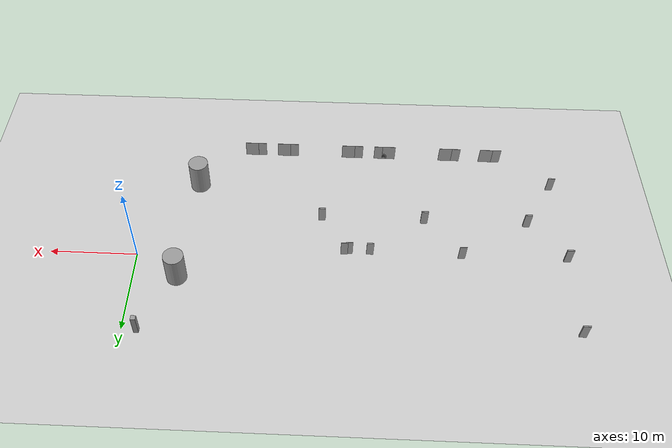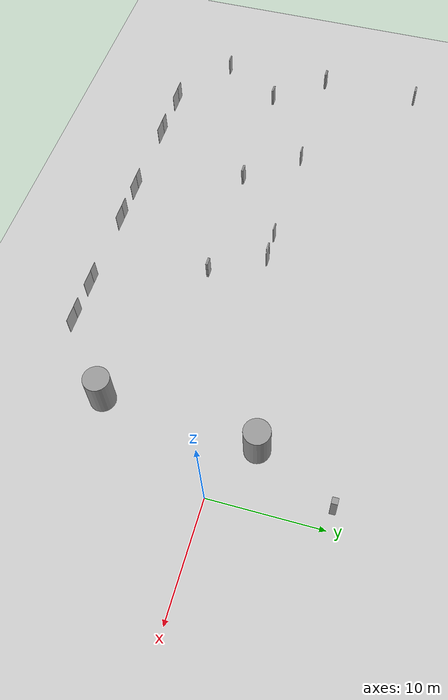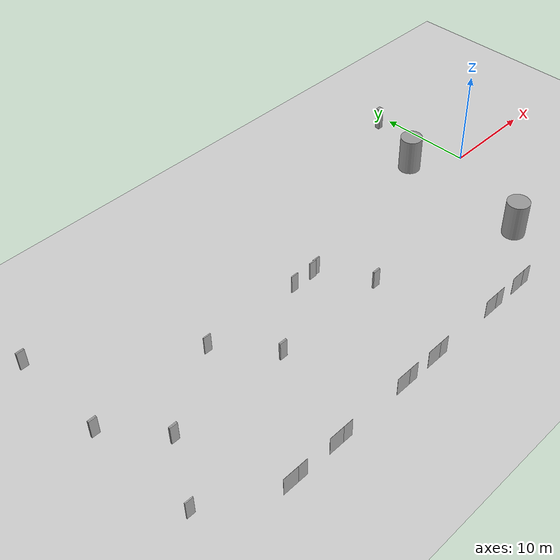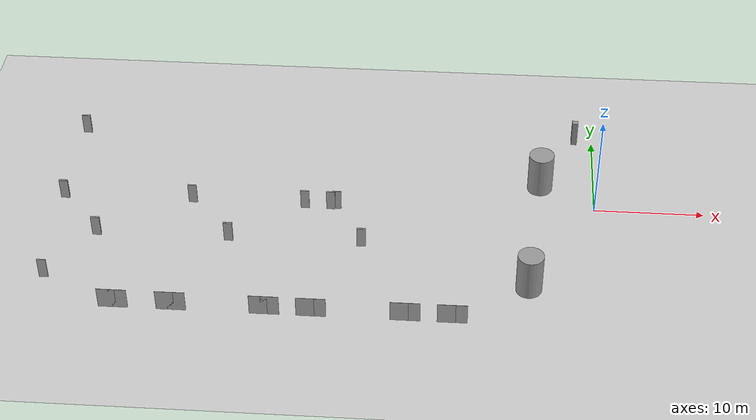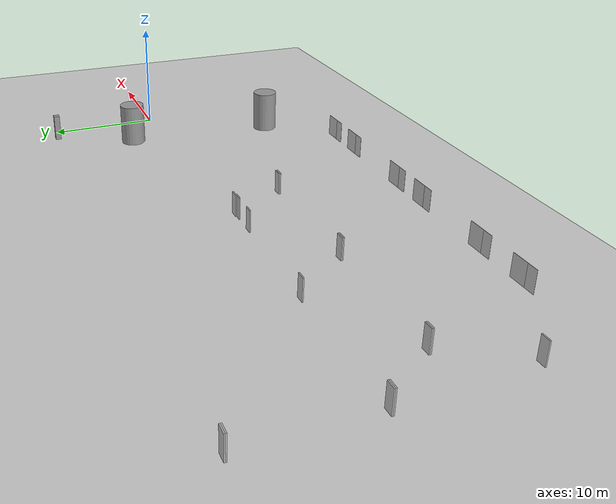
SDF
<sdf version="1.7">
 <world name="default">
  <model name="ground_plane">
   <static>1</static>
   <link name="link">
    <collision name="collision">
     <geometry><plane><normal>0 0 1</normal><size>100 100</size></plane></geometry>
     <surface>
      <contact><collide_bitmask>65535</collide_bitmask></contact>
      <friction><ode><mu>100</mu><mu2>50</mu2></ode></friction>
     </surface>
    </collision>
    <visual name="visual">
     <cast_shadows>0</cast_shadows>
     <geometry><plane><normal>0 0 1</normal><size>100 100</size></plane></geometry>
     <material>
      <script><uri>file://media/materials/scripts/gazebo.material</uri><name>Gazebo/Grey</name></script>
     </material>
    </visual>
   </link>
  </model>
  <model name="Desk_c6">
   <pose>-4 15 -1.68526e+07 0 -0 0</pose>
   <link name="base_link">
    <pose>-44 -14 0 0 -0 0</pose>
    <inertial>
     <inertia><ixx>1</ixx><ixy>0</ixy><ixz>0</ixz><iyy>1</iyy><iyz>0</iyz><izz>1</izz></inertia>
     <mass>1</mass>
    </inertial>
    <velocity>0 0 0 0 -0 0</velocity>
    <acceleration>0 0 0 0 -0 0</acceleration>
    <wrench>0 0 0 0 -0 0</wrench>
   </link>
   <scale>1 1 1</scale>
  </model>
  <model name="VisitorChair_c6">
   <pose>-4 15 -1.68526e+07 0 -0 0</pose>
   <link name="body">
    <pose>-41 -15 0 0 0 -1.5708</pose>
    <inertial>
     <inertia><ixx>1</ixx><ixy>0</ixy><ixz>0</ixz><iyy>1</iyy><iyz>0</iyz><izz>1</izz></inertia>
     <mass>1</mass>
    </inertial>
    <velocity>0 0 0 0 -0 0</velocity>
    <acceleration>0 0 0 0 -0 0</acceleration>
    <wrench>0 0 0 0 -0 0</wrench>
   </link>
   <scale>1 1 1</scale>
  </model>
  <model name="WhiteCabinet_c6">
   <pose>-4 15 -1.68526e+07 0 -0 0</pose>
   <link name="body">
    <pose>-42 -6.5 0 0 -0 0</pose>
    <inertial>
     <inertia><ixx>1</ixx><ixy>0</ixy><ixz>0</ixz><iyy>1</iyy><iyz>0</iyz><izz>1</izz></inertia>
     <mass>1</mass>
    </inertial>
    <velocity>0 0 0 0 -0 0</velocity>
    <acceleration>0 0 0 0 -0 0</acceleration>
    <wrench>0 0 0 0 -0 0</wrench>
   </link>
   <scale>1 1 1</scale>
  </model>
  <model name="TrashBin_c6">
   <pose>-4 15 -1.68526e+07 0 -0 0</pose>
   <link name="body">
    <pose>-43.3 -6.5 0 0 -0 0</pose>
    <inertial>
     <inertia><ixx>1</ixx><ixy>0</ixy><ixz>0</ixz><iyy>1</iyy><iyz>0</iyz><izz>1</izz></inertia>
     <mass>1</mass>
    </inertial>
    <velocity>0 0 0 0 -0 0</velocity>
    <acceleration>0 0 0 0 -0 0</acceleration>
    <wrench>0 0 0 0 -0 0</wrench>
   </link>
   <scale>1 1 1</scale>
  </model>
  <model name="door_08x2m">
   <link name="link">
    <visual name="visual">
     <geometry><box><size>0.1 0.8 2</size></box></geometry>
     <material>
      <script>
       <uri>model://door_08x2m/material/script</uri>
       <uri>model://door_08x2m/material/textures</uri>
       <name>Custom/door_08x2m</name>
      </script>
     </material>
    </visual>
   </link>
   <static>1</static>
   <pose>-45 -6.25 1 0 0 -1.5708</pose>
  </model>
  <model name="door_08x2m_clone">
   <link name="link">
    <visual name="visual">
     <geometry><box><size>0.1 0.8 2</size></box></geometry>
     <material>
      <script>
       <uri>model://door_08x2m/material/script</uri>
       <uri>model://door_08x2m/material/textures</uri>
       <name>Custom/door_08x2m</name>
      </script>
     </material>
    </visual>
   </link>
   <static>1</static>
   <pose>-45 -6.15 1 0 0 -1.5708</pose>
  </model>
  <model name="window_curtains">
   <link name="link">
    <visual name="visual">
     <geometry><box><size>0.02 1.5676 2</size></box></geometry>
     <material>
      <script>
       <uri>model://window_curtains/material/script</uri>
       <uri>model://window_curtains/material/textures</uri>
       <name>Custom/window_curtains</name>
      </script>
      <emissive>0 1 0 1</emissive>
     </material>
    </visual>
   </link>
   <static>1</static>
   <pose>-42 -16.1 1.53112 0 0 -1.5708</pose>
  </model>
  <model name="window_curtains_clone">
   <link name="link">
    <visual name="visual">
     <geometry><box><size>0.02 1.5676 2</size></box></geometry>
     <material>
      <script>
       <uri>model://window_curtains/material/script</uri>
       <uri>model://window_curtains/material/textures</uri>
       <name>Custom/window_curtains</name>
      </script>
      <emissive>0 1 0 1</emissive>
     </material>
    </visual>
   </link>
   <static>1</static>
   <pose>-41 -16.1 1.53112 0 0 -1.5708</pose>
  </model>
  <model name="window_curtains_clone_clone">
   <link name="link">
    <visual name="visual">
     <geometry><box><size>0.02 1.5676 2</size></box></geometry>
     <material>
      <script>
       <uri>model://window_curtains/material/script</uri>
       <uri>model://window_curtains/material/textures</uri>
       <name>Custom/window_curtains</name>
      </script>
      <emissive>0 1 0 1</emissive>
     </material>
    </visual>
   </link>
   <static>1</static>
   <pose>-36 -16.1 1.53112 0 0 -1.5708</pose>
  </model>
  <model name="window_curtains_clone_clone_0">
   <link name="link">
    <visual name="visual">
     <geometry><box><size>0.02 1.5676 2</size></box></geometry>
     <material>
      <script>
       <uri>model://window_curtains/material/script</uri>
       <uri>model://window_curtains/material/textures</uri>
       <name>Custom/window_curtains</name>
      </script>
      <emissive>0 1 0 1</emissive>
     </material>
    </visual>
   </link>
   <static>1</static>
   <pose>-37 -16.1 1.53112 0 0 -1.5708</pose>
  </model>
  <model name="door_08x2m_clone_0">
   <link name="link">
    <visual name="visual">
     <geometry><box><size>0.1 0.8 2</size></box></geometry>
     <material>
      <script>
       <uri>model://door_08x2m/material/script</uri>
       <uri>model://door_08x2m/material/textures</uri>
       <name>Custom/door_08x2m</name>
      </script>
     </material>
    </visual>
   </link>
   <static>1</static>
   <pose>-33 -6.25 1 0 0 -1.5708</pose>
  </model>
  <model name="door_08x2m_clone_clone">
   <link name="link">
    <visual name="visual">
     <geometry><box><size>0.1 0.8 2</size></box></geometry>
     <material>
      <script>
       <uri>model://door_08x2m/material/script</uri>
       <uri>model://door_08x2m/material/textures</uri>
       <name>Custom/door_08x2m</name>
      </script>
     </material>
    </visual>
   </link>
   <static>1</static>
   <pose>-33 -6.15 1 0 0 -1.5708</pose>
  </model>
  <model name="window_curtains_clone_clone_clone">
   <link name="link">
    <visual name="visual">
     <geometry><box><size>0.02 1.5676 2</size></box></geometry>
     <material>
      <script>
       <uri>model://window_curtains/material/script</uri>
       <uri>model://window_curtains/material/textures</uri>
       <name>Custom/window_curtains</name>
      </script>
      <emissive>0 1 0 1</emissive>
     </material>
    </visual>
   </link>
   <static>1</static>
   <pose>-24 -16.1 1.53112 0 0 -1.5708</pose>
  </model>
  <model name="window_curtains_clone_clone_clone_clone">
   <link name="link">
    <visual name="visual">
     <geometry><box><size>0.02 1.5676 2</size></box></geometry>
     <material>
      <script>
       <uri>model://window_curtains/material/script</uri>
       <uri>model://window_curtains/material/textures</uri>
       <name>Custom/window_curtains</name>
      </script>
      <emissive>0 1 0 1</emissive>
     </material>
    </visual>
   </link>
   <static>1</static>
   <pose>-25 -16.1 1.53112 0 0 -1.5708</pose>
  </model>
  <model name="window_curtains_clone_clone_clone_clone_clone">
   <link name="link">
    <visual name="visual">
     <geometry><box><size>0.02 1.5676 2</size></box></geometry>
     <material>
      <script>
       <uri>model://window_curtains/material/script</uri>
       <uri>model://window_curtains/material/textures</uri>
       <name>Custom/window_curtains</name>
      </script>
      <emissive>0 1 0 1</emissive>
     </material>
    </visual>
   </link>
   <static>1</static>
   <pose>-28 -16.1 1.53112 0 0 -1.5708</pose>
  </model>
  <model name="window_curtains_clone_clone_clone_clone_clone_clone">
   <link name="link">
    <visual name="visual">
     <geometry><box><size>0.02 1.5676 2</size></box></geometry>
     <material>
      <script>
       <uri>model://window_curtains/material/script</uri>
       <uri>model://window_curtains/material/textures</uri>
       <name>Custom/window_curtains</name>
      </script>
      <emissive>0 1 0 1</emissive>
     </material>
    </visual>
   </link>
   <static>1</static>
   <pose>-29 -16.1 1.53112 0 0 -1.5708</pose>
  </model>
  <model name="door_08x2m_clone_0_clone">
   <link name="link">
    <visual name="visual">
     <geometry><box><size>0.1 0.8 2</size></box></geometry>
     <material>
      <script>
       <uri>model://door_08x2m/material/script</uri>
       <uri>model://door_08x2m/material/textures</uri>
       <name>Custom/door_08x2m</name>
      </script>
     </material>
    </visual>
   </link>
   <static>1</static>
   <pose>-21 -6.25 1 0 0 -1.5708</pose>
  </model>
  <model name="door_08x2m_clone_clone_clone">
   <link name="link">
    <visual name="visual">
     <geometry><box><size>0.1 0.8 2</size></box></geometry>
     <material>
      <script>
       <uri>model://door_08x2m/material/script</uri>
       <uri>model://door_08x2m/material/textures</uri>
       <name>Custom/door_08x2m</name>
      </script>
     </material>
    </visual>
   </link>
   <static>1</static>
   <pose>-21 -6.15 1 0 0 -1.5708</pose>
  </model>
  <model name="window_curtains_clone_clone_clone_clone_0">
   <link name="link">
    <visual name="visual">
     <geometry><box><size>0.02 1.5676 2</size></box></geometry>
     <material>
      <script>
       <uri>model://window_curtains/material/script</uri>
       <uri>model://window_curtains/material/textures</uri>
       <name>Custom/window_curtains</name>
      </script>
      <emissive>0 1 0 1</emissive>
     </material>
    </visual>
   </link>
   <static>1</static>
   <pose>-12 -16.1 1.53112 0 0 -1.5708</pose>
  </model>
  <model name="window_curtains_clone_clone_clone_clone_0_clone">
   <link name="link">
    <visual name="visual">
     <geometry><box><size>0.02 1.5676 2</size></box></geometry>
     <material>
      <script>
       <uri>model://window_curtains/material/script</uri>
       <uri>model://window_curtains/material/textures</uri>
       <name>Custom/window_curtains</name>
      </script>
      <emissive>0 1 0 1</emissive>
     </material>
    </visual>
   </link>
   <static>1</static>
   <pose>-13 -16.1 1.53112 0 0 -1.5708</pose>
  </model>
  <model name="window_curtains_clone_clone_clone_clone_0_clone_clone">
   <link name="link">
    <visual name="visual">
     <geometry><box><size>0.02 1.5676 2</size></box></geometry>
     <material>
      <script>
       <uri>model://window_curtains/material/script</uri>
       <uri>model://window_curtains/material/textures</uri>
       <name>Custom/window_curtains</name>
      </script>
      <emissive>0 1 0 1</emissive>
     </material>
    </visual>
   </link>
   <static>1</static>
   <pose>-16 -16.1 1.53112 0 0 -1.5708</pose>
  </model>
  <model name="window_curtains_clone_clone_clone_clone_0_clone_clone_clone">
   <link name="link">
    <visual name="visual">
     <geometry><box><size>0.02 1.5676 2</size></box></geometry>
     <material>
      <script>
       <uri>model://window_curtains/material/script</uri>
       <uri>model://window_curtains/material/textures</uri>
       <name>Custom/window_curtains</name>
      </script>
      <emissive>0 1 0 1</emissive>
     </material>
    </visual>
   </link>
   <static>1</static>
   <pose>-17 -16.1 1.53112 0 0 -1.5708</pose>
  </model>
  <model name="door_08x2m_clone_clone_0">
   <link name="link">
    <visual name="visual">
     <geometry><box><size>0.1 0.8 2</size></box></geometry>
     <material>
      <script>
       <uri>model://door_08x2m/material/script</uri>
       <uri>model://door_08x2m/material/textures</uri>
       <name>Custom/door_08x2m</name>
      </script>
     </material>
    </visual>
   </link>
   <static>1</static>
   <pose>-48.5 -12.15 1 0 0 -1.5708</pose>
  </model>
  <model name="door_08x2m_clone_1">
   <link name="link">
    <visual name="visual">
     <geometry><box><size>0.1 0.8 2</size></box></geometry>
     <material>
      <script>
       <uri>model://door_08x2m/material/script</uri>
       <uri>model://door_08x2m/material/textures</uri>
       <name>Custom/door_08x2m</name>
      </script>
     </material>
    </visual>
   </link>
   <static>1</static>
   <pose>-49 8.75 1 0 0 -1.5708</pose>
  </model>
  <model name="door_08x2m_clone_clone_2">
   <link name="link">
    <visual name="visual">
     <geometry><box><size>0.1 0.8 2</size></box></geometry>
     <material>
      <script>
       <uri>model://door_08x2m/material/script</uri>
       <uri>model://door_08x2m/material/textures</uri>
       <name>Custom/door_08x2m</name>
      </script>
     </material>
    </visual>
   </link>
   <static>1</static>
   <pose>-49 8.85 1 0 0 -1.5708</pose>
  </model>
  <model name="door_08x2m_clone_1_clone">
   <link name="link">
    <visual name="visual">
     <geometry><box><size>0.1 0.8 2</size></box></geometry>
     <material>
      <script>
       <uri>model://door_08x2m/material/script</uri>
       <uri>model://door_08x2m/material/textures</uri>
       <name>Custom/door_08x2m</name>
      </script>
     </material>
    </visual>
   </link>
   <static>1</static>
   <pose>-49 -1.25 1 0 0 -1.5708</pose>
  </model>
  <model name="door_08x2m_clone_1_clone_0">
   <link name="link">
    <visual name="visual">
     <geometry><box><size>0.1 0.8 2</size></box></geometry>
     <material>
      <script>
       <uri>model://door_08x2m/material/script</uri>
       <uri>model://door_08x2m/material/textures</uri>
       <name>Custom/door_08x2m</name>
      </script>
     </material>
    </visual>
   </link>
   <static>1</static>
   <pose>-49 -1.15 1 0 0 -1.5708</pose>
  </model>
  <model name="door_08x2m_clone_1_clone_0_clone">
   <link name="link">
    <visual name="visual">
     <geometry><box><size>0.1 0.8 2</size></box></geometry>
     <material>
      <script>
       <uri>model://door_08x2m/material/script</uri>
       <uri>model://door_08x2m/material/textures</uri>
       <name>Custom/door_08x2m</name>
      </script>
     </material>
    </visual>
   </link>
   <static>1</static>
   <pose>-23.6606 -1.15005 1 0 0 -1.5708</pose>
  </model>
  <model name="door_08x2m_clone_1_clone_clone_clone">
   <link name="link">
    <visual name="visual">
     <geometry><box><size>0.1 0.8 2</size></box></geometry>
     <material>
      <script>
       <uri>model://door_08x2m/material/script</uri>
       <uri>model://door_08x2m/material/textures</uri>
       <name>Custom/door_08x2m</name>
      </script>
     </material>
    </visual>
   </link>
   <static>1</static>
   <pose>-26.5904 -1.24949 1 0 0 -1.5708</pose>
  </model>
  <model name="door_08x2m_clone_1_clone_0_clone_clone">
   <link name="link">
    <visual name="visual">
     <geometry><box><size>0.1 0.8 2</size></box></geometry>
     <material>
      <script>
       <uri>model://door_08x2m/material/script</uri>
       <uri>model://door_08x2m/material/textures</uri>
       <name>Custom/door_08x2m</name>
      </script>
     </material>
    </visual>
   </link>
   <static>1</static>
   <pose>-37.0273 -1.10727 1 0 0 -1.5708</pose>
  </model>
  <model name="door_08x2m_clone_1_clone_clone_clone_clone_3">
   <link name="link">
    <visual name="visual">
     <geometry><box><size>0.1 0.8 2</size></box></geometry>
     <material>
      <script>
       <uri>model://door_08x2m/material/script</uri>
       <uri>model://door_08x2m/material/textures</uri>
       <name>Custom/door_08x2m</name>
      </script>
     </material>
    </visual>
   </link>
   <static>1</static>
   <pose>-24.2124 -1.25001 1 0 0 -1.5708</pose>
  </model>
  <model name="unit_cylinder">
   <pose>-6.00209 -11.0008 1.95697 0 -0 0.001766</pose>
   <link name="link">
    <inertial>
     <mass>1</mass>
     <inertia><ixx>0.145833</ixx><ixy>0</ixy><ixz>0</ixz><iyy>0.145833</iyy><iyz>0</iyz><izz>0.125</izz></inertia>
    </inertial>
    <collision name="collision">
     <geometry><cylinder><radius>1.15065</radius><length>3.91395</length></cylinder></geometry>
    </collision>
    <visual name="visual">
     <geometry><cylinder><radius>1.15065</radius><length>3.91395</length></cylinder></geometry>
     <material>
      <script><name>Gazebo/Grey</name><uri>file://media/materials/scripts/gazebo.material</uri></script>
     </material>
    </visual>
   </link>
  </model>
  <model name="unit_cylinder_clone_clone_clone">
   <pose>-4.99993 3 1.95697 0 -0 0.00109</pose>
   <link name="link">
    <inertial>
     <mass>1</mass>
     <inertia><ixx>0.145833</ixx><ixy>0</ixy><ixz>0</ixz><iyy>0.145833</iyy><iyz>0</iyz><izz>0.125</izz></inertia>
    </inertial>
    <collision name="collision">
     <geometry><cylinder><radius>1.15065</radius><length>3.91395</length></cylinder></geometry>
    </collision>
    <visual name="visual">
     <geometry><cylinder><radius>1.15065</radius><length>3.91395</length></cylinder></geometry>
     <material>
      <script><name>Gazebo/Grey</name><uri>file://media/materials/scripts/gazebo.material</uri></script>
     </material>
    </visual>
   </link>
  </model>
  <model name="unit_box_0_clone">
   <pose>-1.68688 10.1376 1.24335 0 -1e-06 -0.001324</pose>
   <link name="link">
    <inertial>
     <mass>1</mass>
     <inertia>
      <ixx>0.166667</ixx>
      <ixy>0</ixy>
      <ixz>0</ixz>
      <iyy>0.166667</iyy>
      <iyz>0</iyz>
      <izz>0.166667</izz>
     </inertia>
    </inertial>
    <collision name="collision"><geometry><box><size>0.54701 0.537478 2.48671</size></box></geometry></collision>
    <visual name="visual">
     <geometry><box><size>0.54701 0.537478 2.48671</size></box></geometry>
     <material>
      <script><name>Gazebo/Grey</name><uri>file://media/materials/scripts/gazebo.material</uri></script>
     </material>
    </visual>
   </link>
  </model>
 </world>
</sdf>
